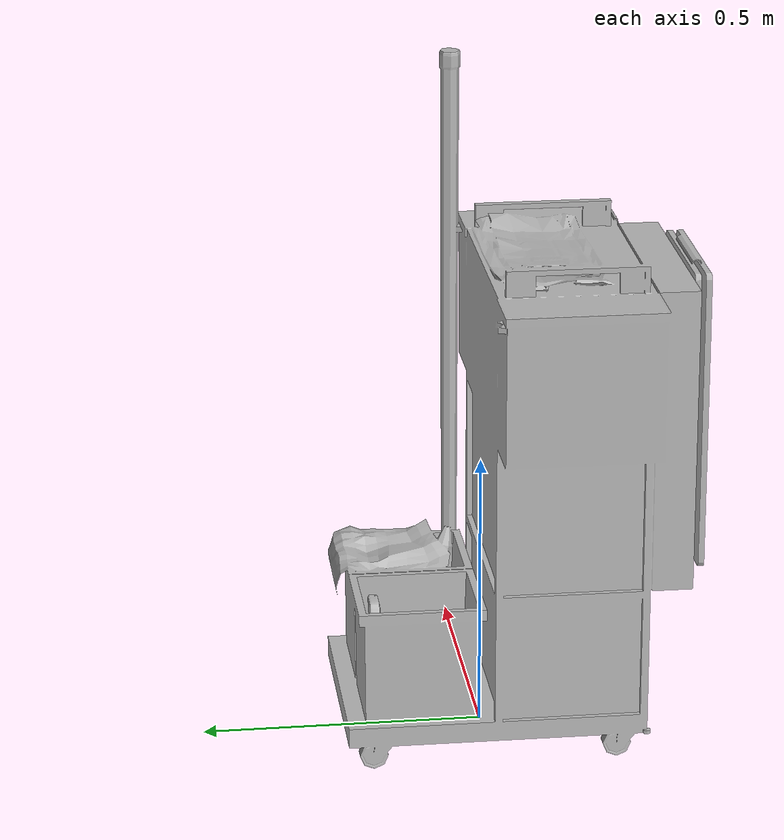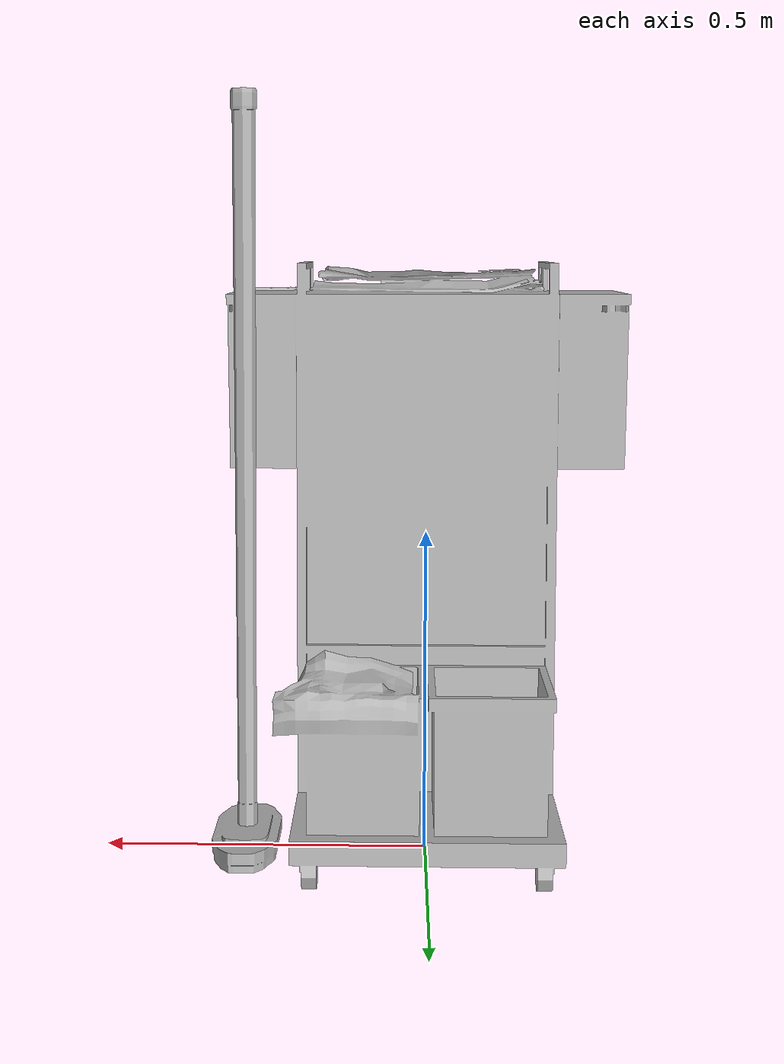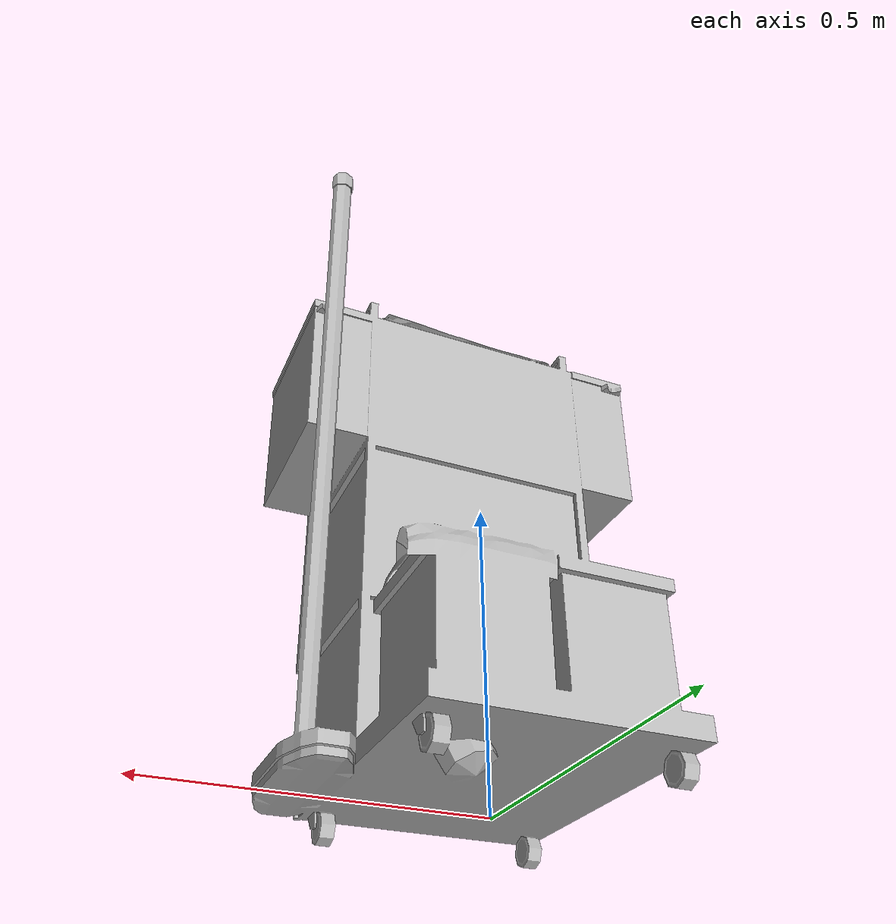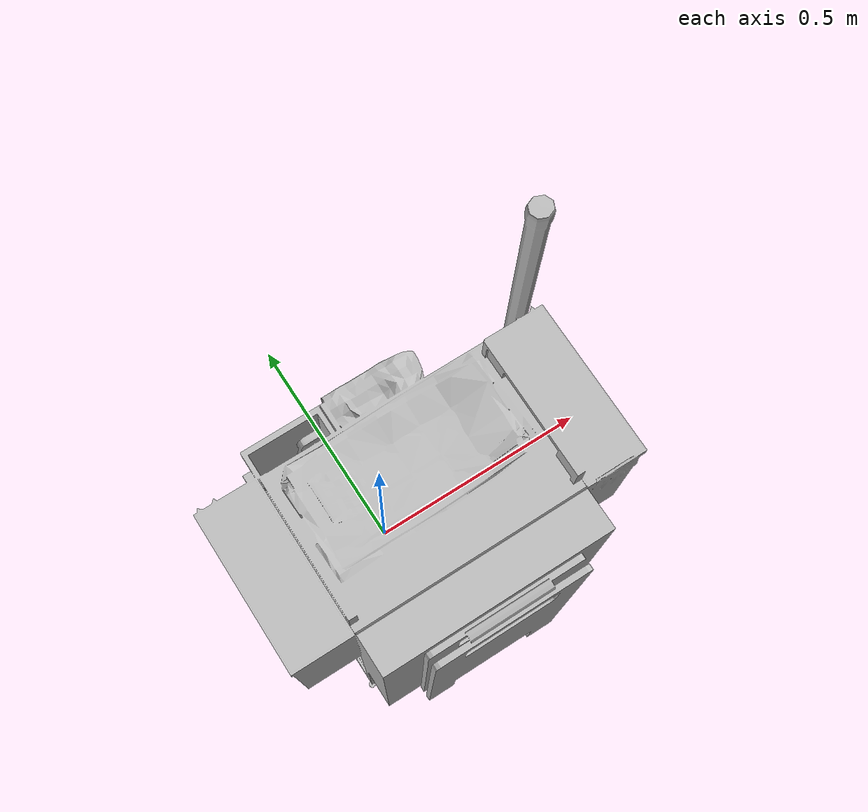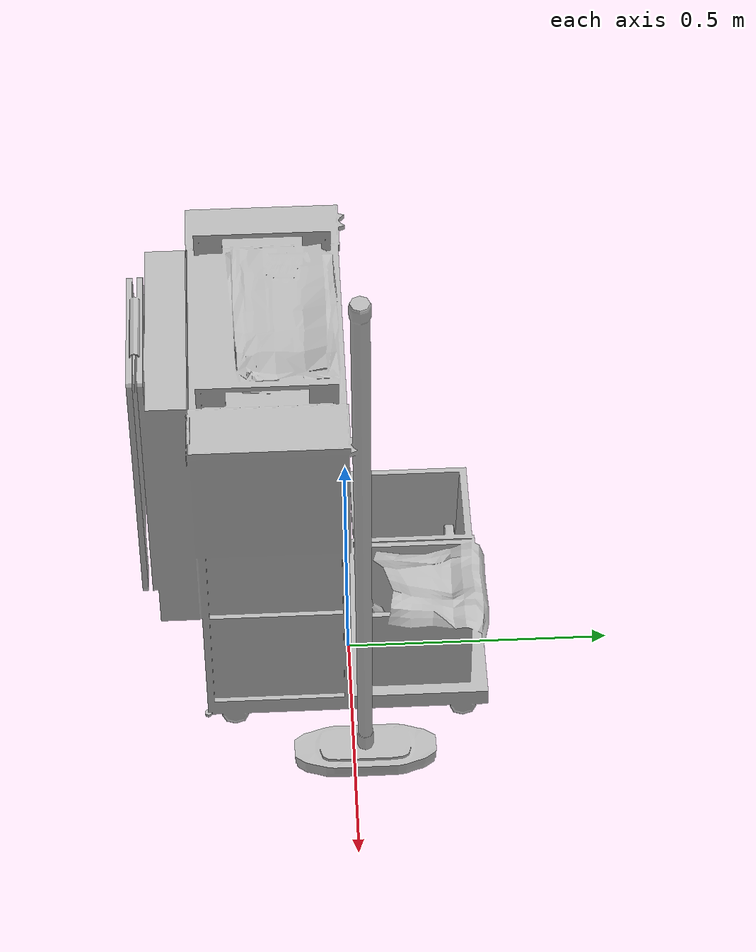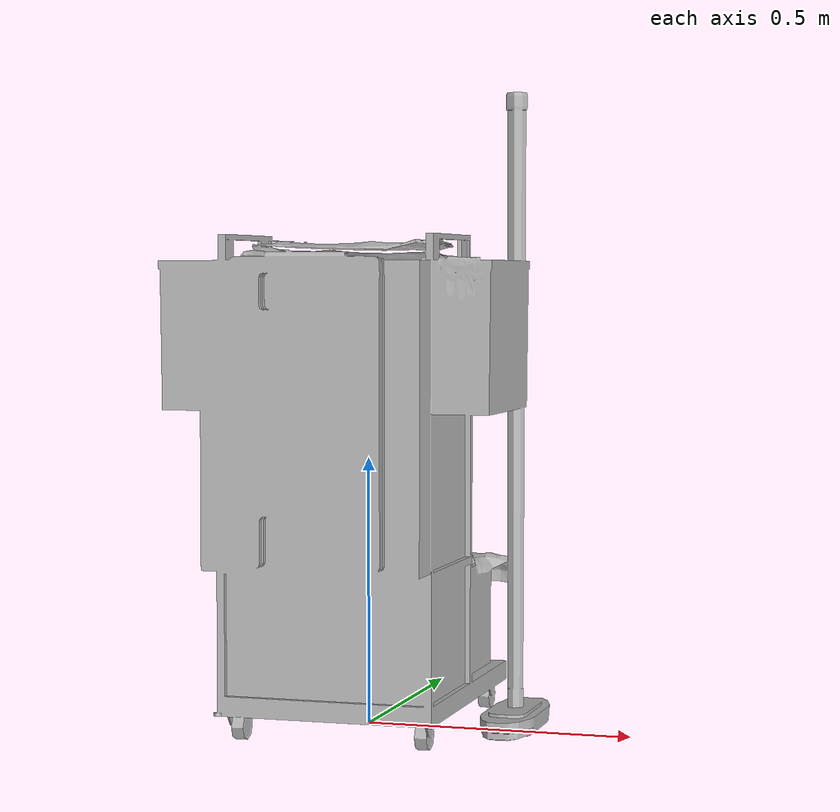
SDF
<?xml version="1.0" ?>
<sdf version="1.5">
  <model name="MopCart3">
    <link name="link">
      <pose>0 0 0 0 0 0</pose>

        <visual name="visual">
          <geometry>
            <mesh><uri>model://MopCart3/meshes/MopCart3.obj</uri></mesh>
          </geometry>
        </visual>

        <collision name="collision">
          <geometry>
            <mesh><uri>model://MopCart3/meshes/MopCart3.obj</uri></mesh>
          </geometry>
        </collision>

    </link>
  </model>
</sdf>
